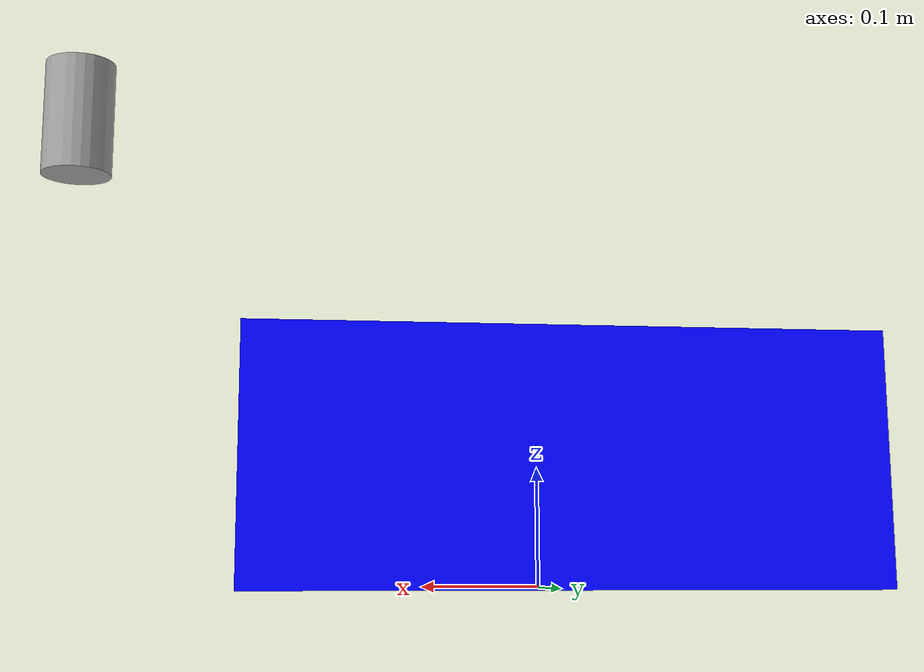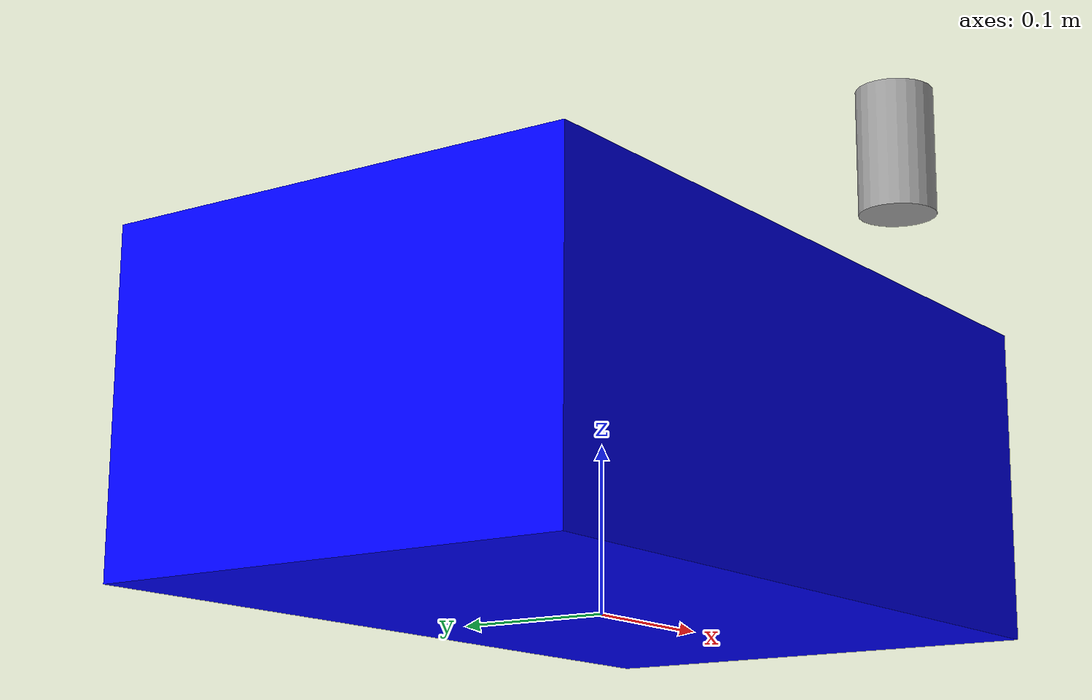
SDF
<sdf version='1.11'>
  <model name='differential_drive_robot'>
    <link name='base_link'>
      <inertial>
        <pose>0 0 0 0 0 0</pose>
        <mass>10</mass>
        <inertia>
          <ixx>1</ixx>
          <ixy>0</ixy>
          <ixz>0</ixz>
          <iyy>1</iyy>
          <iyz>0</iyz>
          <izz>1</izz>
        </inertia>
      </inertial>
      <collision name='base_link_collision'>
        <pose>0 0 0.10000000000000001 0 0 0</pose>
        <geometry>
          <box>
            <size>0.5 0.29999999999999999 0.20000000000000001</size>
          </box>
        </geometry>
      </collision>
      <collision name='base_link_fixed_joint_lump__lidar_link_collision_1'>
        <pose>0.40000000000000002 0 0.40000000000000002 0 0 0</pose>
        <geometry>
          <cylinder>
            <length>0.10000000000000001</length>
            <radius>0.029999999999999999</radius>
          </cylinder>
        </geometry>
      </collision>
      <visual name='base_link_visual'>
        <pose>0 0 0.10000000000000001 0 0 0</pose>
        <geometry>
          <box>
            <size>0.5 0.29999999999999999 0.20000000000000001</size>
          </box>
        </geometry>
        <material>
          <diffuse>0 0 1 1</diffuse>
          <ambient>0 0 1 1</ambient>
        </material>
      </visual>
      <visual name='base_link_fixed_joint_lump__lidar_link_visual_1'>
        <pose>0.40000000000000002 0 0.40000000000000002 0 0 0</pose>
        <geometry>
          <cylinder>
            <length>0.10000000000000001</length>
            <radius>0.029999999999999999</radius>
          </cylinder>
        </geometry>
        <material>
          <diffuse>0.625 0.625 0.625 1</diffuse>
          <ambient>0.625 0.625 0.625 1</ambient>
        </material>
      </visual>
    </link>
    <frame name='lidar_joint' attached_to='base_link'>
      <pose>0.20000000000000001 0 0.20000000000000001 0 0 0</pose>
    </frame>
    <frame name='lidar_link' attached_to='lidar_joint'>
      <pose>0 0 0 0 0 0</pose>
    </frame>
  </model>
</sdf>
